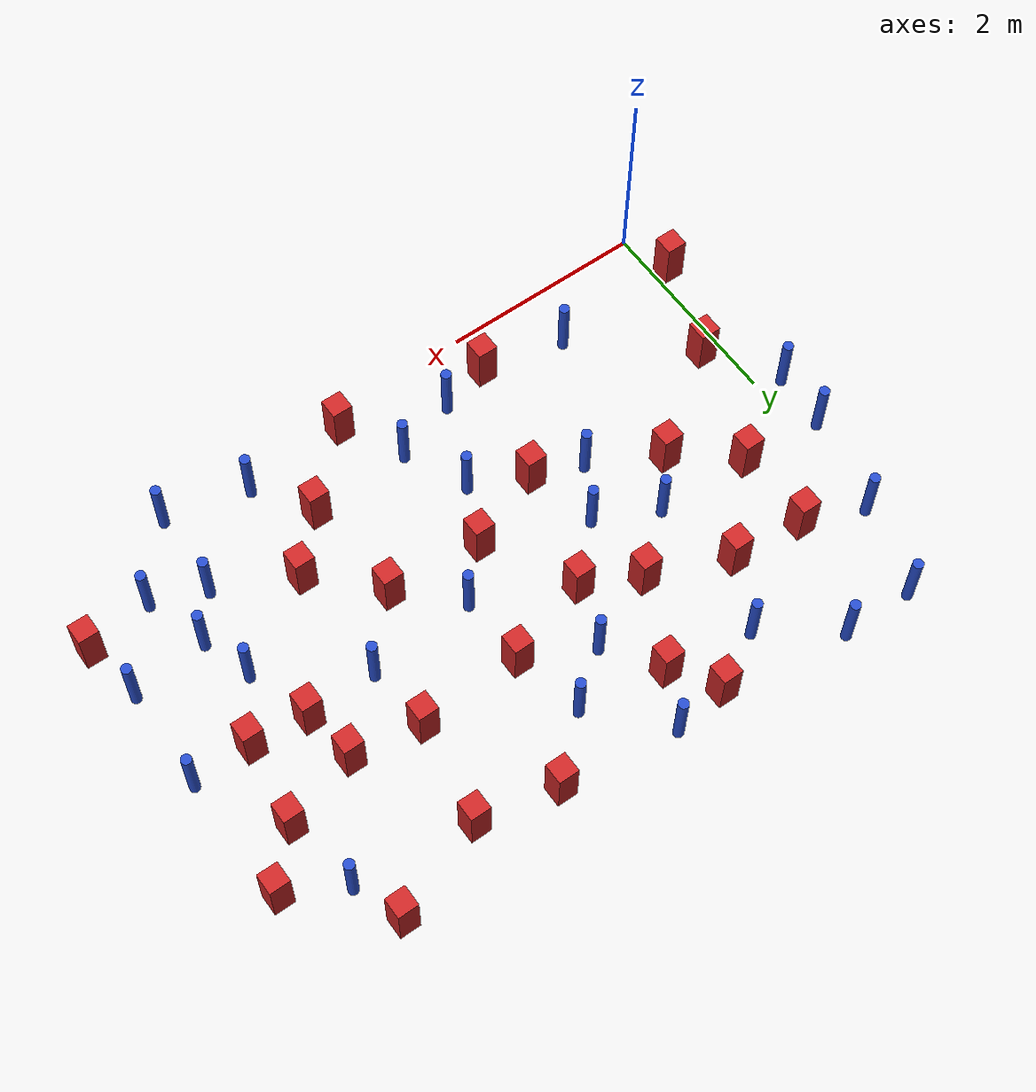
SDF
<sdf version="1.6">
 <model name="dense_53">
  <model name="square_post_obstacle0">
   <static>true</static>
   <pose>2.64326265349 2.7935497767 -6.11067671241e-07 -5.50515727128e-06 -8.79689657224e-07 2.37013304536e-05</pose>
   <link name="link">
    <pose>0 0 0.25 0 -0 0</pose>
    <inertial>
     <mass>100</mass>
     <inertia>
      <ixx>0.166667</ixx>
      <ixy>0</ixy>
      <ixz>0</ixz>
      <iyy>0.166667</iyy>
      <iyz>0</iyz>
      <izz>0.166667</izz>
     </inertia>
    </inertial>
    <collision name="collision"><geometry><box><size>.2 .2 .5</size></box></geometry></collision>
    <visual name="visual">
     <geometry><box><size>.2 .2 .5</size></box></geometry>
     <material>
      <script><name>Gazebo/Red</name><uri>file://media/materials/scripts/gazebo.material</uri></script>
     </material>
    </visual>
   </link>
  </model>
  <model name="pole_obstacle1">
   <static>true</static>
   <pose>1.67325718551 4.01669044763 -9.47619616065e-06 5.49618799737e-07 2.3631041406e-07 -1.55090534801e-07</pose>
   <link name="link">
    <pose>0 0 0.3 0 -0 0</pose>
    <inertial>
     <mass>1</mass>
     <inertia><ixx>0.145833</ixx><ixy>0</ixy><ixz>0</ixz><iyy>0.145833</iyy><iyz>0</iyz><izz>0.125</izz></inertia>
    </inertial>
    <collision name="collision">
     <geometry><cylinder><radius>0.05</radius><length>.6</length></cylinder></geometry>
    </collision>
    <visual name="visual">
     <geometry><cylinder><radius>0.05</radius><length>.6</length></cylinder></geometry>
     <material>
      <script><name>Gazebo/Blue</name><uri>file://media/materials/scripts/gazebo.material</uri></script>
     </material>
    </visual>
   </link>
  </model>
  <model name="square_post_obstacle8">
   <static>true</static>
   <pose>5.17539859756 2.99115189557 -6.11067671241e-07 -5.50515727128e-06 -8.79689657224e-07 2.37013304536e-05</pose>
   <link name="link">
    <pose>0 0 0.25 0 -0 0</pose>
    <inertial>
     <mass>100</mass>
     <inertia>
      <ixx>0.166667</ixx>
      <ixy>0</ixy>
      <ixz>0</ixz>
      <iyy>0.166667</iyy>
      <iyz>0</iyz>
      <izz>0.166667</izz>
     </inertia>
    </inertial>
    <collision name="collision"><geometry><box><size>.2 .2 .5</size></box></geometry></collision>
    <visual name="visual">
     <geometry><box><size>.2 .2 .5</size></box></geometry>
     <material>
      <script><name>Gazebo/Red</name><uri>file://media/materials/scripts/gazebo.material</uri></script>
     </material>
    </visual>
   </link>
  </model>
  <model name="square_post_obstacle9">
   <static>true</static>
   <pose>2.01188806093 0.438989155133 -6.11067671241e-07 -5.50515727128e-06 -8.79689657224e-07 2.37013304536e-05</pose>
   <link name="link">
    <pose>0 0 0.25 0 -0 0</pose>
    <inertial>
     <mass>100</mass>
     <inertia>
      <ixx>0.166667</ixx>
      <ixy>0</ixy>
      <ixz>0</ixz>
      <iyy>0.166667</iyy>
      <iyz>0</iyz>
      <izz>0.166667</izz>
     </inertia>
    </inertial>
    <collision name="collision"><geometry><box><size>.2 .2 .5</size></box></geometry></collision>
    <visual name="visual">
     <geometry><box><size>.2 .2 .5</size></box></geometry>
     <material>
      <script><name>Gazebo/Red</name><uri>file://media/materials/scripts/gazebo.material</uri></script>
     </material>
    </visual>
   </link>
  </model>
  <model name="square_post_obstacle19">
   <static>true</static>
   <pose>2.12141466955 3.06621668363 -6.11067671241e-07 -5.50515727128e-06 -8.79689657224e-07 2.37013304536e-05</pose>
   <link name="link">
    <pose>0 0 0.25 0 -0 0</pose>
    <inertial>
     <mass>100</mass>
     <inertia>
      <ixx>0.166667</ixx>
      <ixy>0</ixy>
      <ixz>0</ixz>
      <iyy>0.166667</iyy>
      <iyz>0</iyz>
      <izz>0.166667</izz>
     </inertia>
    </inertial>
    <collision name="collision"><geometry><box><size>.2 .2 .5</size></box></geometry></collision>
    <visual name="visual">
     <geometry><box><size>.2 .2 .5</size></box></geometry>
     <material>
      <script><name>Gazebo/Red</name><uri>file://media/materials/scripts/gazebo.material</uri></script>
     </material>
    </visual>
   </link>
  </model>
  <model name="square_post_obstacle23">
   <static>true</static>
   <pose>0.218265977354 1.46688420381 -6.11067671241e-07 -5.50515727128e-06 -8.79689657224e-07 2.37013304536e-05</pose>
   <link name="link">
    <pose>0 0 0.25 0 -0 0</pose>
    <inertial>
     <mass>100</mass>
     <inertia>
      <ixx>0.166667</ixx>
      <ixy>0</ixy>
      <ixz>0</ixz>
      <iyy>0.166667</iyy>
      <iyz>0</iyz>
      <izz>0.166667</izz>
     </inertia>
    </inertial>
    <collision name="collision"><geometry><box><size>.2 .2 .5</size></box></geometry></collision>
    <visual name="visual">
     <geometry><box><size>.2 .2 .5</size></box></geometry>
     <material>
      <script><name>Gazebo/Red</name><uri>file://media/materials/scripts/gazebo.material</uri></script>
     </material>
    </visual>
   </link>
  </model>
  <model name="square_post_obstacle30">
   <static>true</static>
   <pose>5.6018355657 4.41001559066 -6.11067671241e-07 -5.50515727128e-06 -8.79689657224e-07 2.37013304536e-05</pose>
   <link name="link">
    <pose>0 0 0.25 0 -0 0</pose>
    <inertial>
     <mass>100</mass>
     <inertia>
      <ixx>0.166667</ixx>
      <ixy>0</ixy>
      <ixz>0</ixz>
      <iyy>0.166667</iyy>
      <iyz>0</iyz>
      <izz>0.166667</izz>
     </inertia>
    </inertial>
    <collision name="collision"><geometry><box><size>.2 .2 .5</size></box></geometry></collision>
    <visual name="visual">
     <geometry><box><size>.2 .2 .5</size></box></geometry>
     <material>
      <script><name>Gazebo/Red</name><uri>file://media/materials/scripts/gazebo.material</uri></script>
     </material>
    </visual>
   </link>
  </model>
  <model name="pole_obstacle21">
   <static>true</static>
   <pose>1.1973587895 0.607261237285 -9.47619616065e-06 5.49618799737e-07 2.36310414065e-07 -1.55090534798e-07</pose>
   <link name="link">
    <pose>0 0 0.3 0 -0 0</pose>
    <inertial>
     <mass>1</mass>
     <inertia><ixx>0.145833</ixx><ixy>0</ixy><ixz>0</ixz><iyy>0.145833</iyy><iyz>0</iyz><izz>0.125</izz></inertia>
    </inertial>
    <collision name="collision">
     <geometry><cylinder><radius>0.05</radius><length>.6</length></cylinder></geometry>
    </collision>
    <visual name="visual">
     <geometry><cylinder><radius>0.05</radius><length>.6</length></cylinder></geometry>
     <material>
      <script><name>Gazebo/Blue</name><uri>file://media/materials/scripts/gazebo.material</uri></script>
     </material>
    </visual>
   </link>
  </model>
  <model name="square_post_obstacle32">
   <static>true</static>
   <pose>4.03051807676 1.88196295636 -6.11067671241e-07 -5.50515727128e-06 -8.79689657224e-07 2.37013304536e-05</pose>
   <link name="link">
    <pose>0 0 0.25 0 -0 0</pose>
    <inertial>
     <mass>100</mass>
     <inertia>
      <ixx>0.166667</ixx>
      <ixy>0</ixy>
      <ixz>0</ixz>
      <iyy>0.166667</iyy>
      <iyz>0</iyz>
      <izz>0.166667</izz>
     </inertia>
    </inertial>
    <collision name="collision"><geometry><box><size>.2 .2 .5</size></box></geometry></collision>
    <visual name="visual">
     <geometry><box><size>.2 .2 .5</size></box></geometry>
     <material>
      <script><name>Gazebo/Red</name><uri>file://media/materials/scripts/gazebo.material</uri></script>
     </material>
    </visual>
   </link>
  </model>
  <model name="pole_obstacle29">
   <static>true</static>
   <pose>0.0483259557495 3.65297619411 -9.4761961606e-06 5.49618799729e-07 2.36310413998e-07 -1.55090534825e-07</pose>
   <link name="link">
    <pose>0 0 0.3 0 -0 0</pose>
    <inertial>
     <mass>1</mass>
     <inertia><ixx>0.145833</ixx><ixy>0</ixy><ixz>0</ixz><iyy>0.145833</iyy><iyz>0</iyz><izz>0.125</izz></inertia>
    </inertial>
    <collision name="collision">
     <geometry><cylinder><radius>0.05</radius><length>.6</length></cylinder></geometry>
    </collision>
    <visual name="visual">
     <geometry><cylinder><radius>0.05</radius><length>.6</length></cylinder></geometry>
     <material>
      <script><name>Gazebo/Blue</name><uri>file://media/materials/scripts/gazebo.material</uri></script>
     </material>
    </visual>
   </link>
  </model>
  <model name="square_post_obstacle34">
   <static>true</static>
   <pose>0.638338198088 2.637271387 -6.11067671241e-07 -5.50515727128e-06 -8.79689657224e-07 2.37013304536e-05</pose>
   <link name="link">
    <pose>0 0 0.25 0 -0 0</pose>
    <inertial>
     <mass>100</mass>
     <inertia>
      <ixx>0.166667</ixx>
      <ixy>0</ixy>
      <ixz>0</ixz>
      <iyy>0.166667</iyy>
      <iyz>0</iyz>
      <izz>0.166667</izz>
     </inertia>
    </inertial>
    <collision name="collision"><geometry><box><size>.2 .2 .5</size></box></geometry></collision>
    <visual name="visual">
     <geometry><box><size>.2 .2 .5</size></box></geometry>
     <material>
      <script><name>Gazebo/Red</name><uri>file://media/materials/scripts/gazebo.material</uri></script>
     </material>
    </visual>
   </link>
  </model>
  <model name="pole_obstacle35">
   <static>true</static>
   <pose>-0.220098208647 2.12647914286 -9.4761961606e-06 5.49618799729e-07 2.36310413995e-07 -1.55090534826e-07</pose>
   <link name="link">
    <pose>0 0 0.3 0 -0 0</pose>
    <inertial>
     <mass>1</mass>
     <inertia><ixx>0.145833</ixx><ixy>0</ixy><ixz>0</ixz><iyy>0.145833</iyy><iyz>0</iyz><izz>0.125</izz></inertia>
    </inertial>
    <collision name="collision">
     <geometry><cylinder><radius>0.05</radius><length>.6</length></cylinder></geometry>
    </collision>
    <visual name="visual">
     <geometry><cylinder><radius>0.05</radius><length>.6</length></cylinder></geometry>
     <material>
      <script><name>Gazebo/Blue</name><uri>file://media/materials/scripts/gazebo.material</uri></script>
     </material>
    </visual>
   </link>
  </model>
  <model name="square_post_obstacle38">
   <static>true</static>
   <pose>0.642048165023 3.43116105708 -6.11067671241e-07 -5.50515727128e-06 -8.79689657224e-07 2.37013304536e-05</pose>
   <link name="link">
    <pose>0 0 0.25 0 -0 0</pose>
    <inertial>
     <mass>100</mass>
     <inertia>
      <ixx>0.166667</ixx>
      <ixy>0</ixy>
      <ixz>0</ixz>
      <iyy>0.166667</iyy>
      <iyz>0</iyz>
      <izz>0.166667</izz>
     </inertia>
    </inertial>
    <collision name="collision"><geometry><box><size>.2 .2 .5</size></box></geometry></collision>
    <visual name="visual">
     <geometry><box><size>.2 .2 .5</size></box></geometry>
     <material>
      <script><name>Gazebo/Red</name><uri>file://media/materials/scripts/gazebo.material</uri></script>
     </material>
    </visual>
   </link>
  </model>
  <model name="square_post_obstacle46">
   <static>true</static>
   <pose>2.32449474555 1.6426643199 -6.11067671241e-07 -5.50515727128e-06 -8.79689657224e-07 2.37013304536e-05</pose>
   <link name="link">
    <pose>0 0 0.25 0 -0 0</pose>
    <inertial>
     <mass>100</mass>
     <inertia>
      <ixx>0.166667</ixx>
      <ixy>0</ixy>
      <ixz>0</ixz>
      <iyy>0.166667</iyy>
      <iyz>0</iyz>
      <izz>0.166667</izz>
     </inertia>
    </inertial>
    <collision name="collision"><geometry><box><size>.2 .2 .5</size></box></geometry></collision>
    <visual name="visual">
     <geometry><box><size>.2 .2 .5</size></box></geometry>
     <material>
      <script><name>Gazebo/Red</name><uri>file://media/materials/scripts/gazebo.material</uri></script>
     </material>
    </visual>
   </link>
  </model>
  <model name="pole_obstacle53">
   <static>true</static>
   <pose>-0.175183836312 2.69586648533 -9.47619616065e-06 5.49618799738e-07 2.36310414068e-07 -1.55090534794e-07</pose>
   <link name="link">
    <pose>0 0 0.3 0 -0 0</pose>
    <inertial>
     <mass>1</mass>
     <inertia><ixx>0.145833</ixx><ixy>0</ixy><ixz>0</ixz><iyy>0.145833</iyy><iyz>0</iyz><izz>0.125</izz></inertia>
    </inertial>
    <collision name="collision">
     <geometry><cylinder><radius>0.05</radius><length>.6</length></cylinder></geometry>
    </collision>
    <visual name="visual">
     <geometry><cylinder><radius>0.05</radius><length>.6</length></cylinder></geometry>
     <material>
      <script><name>Gazebo/Blue</name><uri>file://media/materials/scripts/gazebo.material</uri></script>
     </material>
    </visual>
   </link>
  </model>
  <model name="pole_obstacle58">
   <static>true</static>
   <pose>5.80623147461 0.737018467399 -9.47619616065e-06 5.49618799737e-07 2.36310414061e-07 -1.550905348e-07</pose>
   <link name="link">
    <pose>0 0 0.3 0 -0 0</pose>
    <inertial>
     <mass>1</mass>
     <inertia><ixx>0.145833</ixx><ixy>0</ixy><ixz>0</ixz><iyy>0.145833</iyy><iyz>0</iyz><izz>0.125</izz></inertia>
    </inertial>
    <collision name="collision">
     <geometry><cylinder><radius>0.05</radius><length>.6</length></cylinder></geometry>
    </collision>
    <visual name="visual">
     <geometry><cylinder><radius>0.05</radius><length>.6</length></cylinder></geometry>
     <material>
      <script><name>Gazebo/Blue</name><uri>file://media/materials/scripts/gazebo.material</uri></script>
     </material>
    </visual>
   </link>
  </model>
  <model name="square_post_obstacle62">
   <static>true</static>
   <pose>6.32141894441 3.65301750351 -6.11067671241e-07 -5.50515727128e-06 -8.79689657224e-07 2.37013304536e-05</pose>
   <link name="link">
    <pose>0 0 0.25 0 -0 0</pose>
    <inertial>
     <mass>100</mass>
     <inertia>
      <ixx>0.166667</ixx>
      <ixy>0</ixy>
      <ixz>0</ixz>
      <iyy>0.166667</iyy>
      <iyz>0</iyz>
      <izz>0.166667</izz>
     </inertia>
    </inertial>
    <collision name="collision"><geometry><box><size>.2 .2 .5</size></box></geometry></collision>
    <visual name="visual">
     <geometry><box><size>.2 .2 .5</size></box></geometry>
     <material>
      <script><name>Gazebo/Red</name><uri>file://media/materials/scripts/gazebo.material</uri></script>
     </material>
    </visual>
   </link>
  </model>
  <model name="square_post_obstacle65">
   <static>true</static>
   <pose>6.4489217016 0.84232384105 -6.11067671241e-07 -5.50515727128e-06 -8.79689657224e-07 2.37013304536e-05</pose>
   <link name="link">
    <pose>0 0 0.25 0 -0 0</pose>
    <inertial>
     <mass>100</mass>
     <inertia>
      <ixx>0.166667</ixx>
      <ixy>0</ixy>
      <ixz>0</ixz>
      <iyy>0.166667</iyy>
      <iyz>0</iyz>
      <izz>0.166667</izz>
     </inertia>
    </inertial>
    <collision name="collision"><geometry><box><size>.2 .2 .5</size></box></geometry></collision>
    <visual name="visual">
     <geometry><box><size>.2 .2 .5</size></box></geometry>
     <material>
      <script><name>Gazebo/Red</name><uri>file://media/materials/scripts/gazebo.material</uri></script>
     </material>
    </visual>
   </link>
  </model>
  <model name="square_post_obstacle71">
   <static>true</static>
   <pose>2.23199578063 4.31087838793 -6.11067671241e-07 -5.50515727128e-06 -8.79689657224e-07 2.37013304536e-05</pose>
   <link name="link">
    <pose>0 0 0.25 0 -0 0</pose>
    <inertial>
     <mass>100</mass>
     <inertia>
      <ixx>0.166667</ixx>
      <ixy>0</ixy>
      <ixz>0</ixz>
      <iyy>0.166667</iyy>
      <iyz>0</iyz>
      <izz>0.166667</izz>
     </inertia>
    </inertial>
    <collision name="collision"><geometry><box><size>.2 .2 .5</size></box></geometry></collision>
    <visual name="visual">
     <geometry><box><size>.2 .2 .5</size></box></geometry>
     <material>
      <script><name>Gazebo/Red</name><uri>file://media/materials/scripts/gazebo.material</uri></script>
     </material>
    </visual>
   </link>
  </model>
  <model name="pole_obstacle72">
   <static>true</static>
   <pose>5.78239024026 3.94156603827 -9.47619616065e-06 5.49618799738e-07 2.36310414051e-07 -1.55090534805e-07</pose>
   <link name="link">
    <pose>0 0 0.3 0 -0 0</pose>
    <inertial>
     <mass>1</mass>
     <inertia><ixx>0.145833</ixx><ixy>0</ixy><ixz>0</ixz><iyy>0.145833</iyy><iyz>0</iyz><izz>0.125</izz></inertia>
    </inertial>
    <collision name="collision">
     <geometry><cylinder><radius>0.05</radius><length>.6</length></cylinder></geometry>
    </collision>
    <visual name="visual">
     <geometry><cylinder><radius>0.05</radius><length>.6</length></cylinder></geometry>
     <material>
      <script><name>Gazebo/Blue</name><uri>file://media/materials/scripts/gazebo.material</uri></script>
     </material>
    </visual>
   </link>
  </model>
  <model name="pole_obstacle73">
   <static>true</static>
   <pose>2.84754283846 3.36684391481 -9.47619616065e-06 5.49618799737e-07 2.36310414051e-07 -1.55090534807e-07</pose>
   <link name="link">
    <pose>0 0 0.3 0 -0 0</pose>
    <inertial>
     <mass>1</mass>
     <inertia><ixx>0.145833</ixx><ixy>0</ixy><ixz>0</ixz><iyy>0.145833</iyy><iyz>0</iyz><izz>0.125</izz></inertia>
    </inertial>
    <collision name="collision">
     <geometry><cylinder><radius>0.05</radius><length>.6</length></cylinder></geometry>
    </collision>
    <visual name="visual">
     <geometry><cylinder><radius>0.05</radius><length>.6</length></cylinder></geometry>
     <material>
      <script><name>Gazebo/Blue</name><uri>file://media/materials/scripts/gazebo.material</uri></script>
     </material>
    </visual>
   </link>
  </model>
  <model name="pole_obstacle75">
   <static>true</static>
   <pose>0.30811772106 4.52176608656 -9.47619616065e-06 5.49618799737e-07 2.36310414065e-07 -1.55090534796e-07</pose>
   <link name="link">
    <pose>0 0 0.3 0 -0 0</pose>
    <inertial>
     <mass>1</mass>
     <inertia><ixx>0.145833</ixx><ixy>0</ixy><ixz>0</ixz><iyy>0.145833</iyy><iyz>0</iyz><izz>0.125</izz></inertia>
    </inertial>
    <collision name="collision">
     <geometry><cylinder><radius>0.05</radius><length>.6</length></cylinder></geometry>
    </collision>
    <visual name="visual">
     <geometry><cylinder><radius>0.05</radius><length>.6</length></cylinder></geometry>
     <material>
      <script><name>Gazebo/Blue</name><uri>file://media/materials/scripts/gazebo.material</uri></script>
     </material>
    </visual>
   </link>
  </model>
  <model name="pole_obstacle81">
   <static>true</static>
   <pose>2.13803380317 2.31322065516 -9.47619616065e-06 5.49618799737e-07 2.36310414051e-07 -1.55090534807e-07</pose>
   <link name="link">
    <pose>0 0 0.3 0 -0 0</pose>
    <inertial>
     <mass>1</mass>
     <inertia><ixx>0.145833</ixx><ixy>0</ixy><ixz>0</ixz><iyy>0.145833</iyy><iyz>0</iyz><izz>0.125</izz></inertia>
    </inertial>
    <collision name="collision">
     <geometry><cylinder><radius>0.05</radius><length>.6</length></cylinder></geometry>
    </collision>
    <visual name="visual">
     <geometry><cylinder><radius>0.05</radius><length>.6</length></cylinder></geometry>
     <material>
      <script><name>Gazebo/Blue</name><uri>file://media/materials/scripts/gazebo.material</uri></script>
     </material>
    </visual>
   </link>
  </model>
  <model name="pole_obstacle82">
   <static>true</static>
   <pose>5.2673751742 0.0861989654456 -9.47619616065e-06 5.49618799737e-07 2.36310414064e-07 -1.55090534798e-07</pose>
   <link name="link">
    <pose>0 0 0.3 0 -0 0</pose>
    <inertial>
     <mass>1</mass>
     <inertia><ixx>0.145833</ixx><ixy>0</ixy><ixz>0</ixz><iyy>0.145833</iyy><iyz>0</iyz><izz>0.125</izz></inertia>
    </inertial>
    <collision name="collision">
     <geometry><cylinder><radius>0.05</radius><length>.6</length></cylinder></geometry>
    </collision>
    <visual name="visual">
     <geometry><cylinder><radius>0.05</radius><length>.6</length></cylinder></geometry>
     <material>
      <script><name>Gazebo/Blue</name><uri>file://media/materials/scripts/gazebo.material</uri></script>
     </material>
    </visual>
   </link>
  </model>
  <model name="pole_obstacle86">
   <static>true</static>
   <pose>3.33875394392 3.74084037561 -9.47619616065e-06 5.49618799737e-07 2.36310414051e-07 -1.55090534807e-07</pose>
   <link name="link">
    <pose>0 0 0.3 0 -0 0</pose>
    <inertial>
     <mass>1</mass>
     <inertia><ixx>0.145833</ixx><ixy>0</ixy><ixz>0</ixz><iyy>0.145833</iyy><iyz>0</iyz><izz>0.125</izz></inertia>
    </inertial>
    <collision name="collision">
     <geometry><cylinder><radius>0.05</radius><length>.6</length></cylinder></geometry>
    </collision>
    <visual name="visual">
     <geometry><cylinder><radius>0.05</radius><length>.6</length></cylinder></geometry>
     <material>
      <script><name>Gazebo/Blue</name><uri>file://media/materials/scripts/gazebo.material</uri></script>
     </material>
    </visual>
   </link>
  </model>
  <model name="pole_obstacle96">
   <static>true</static>
   <pose>4.46110096537 0.269814581207 -9.47619616065e-06 5.49618799737e-07 2.3631041406e-07 -1.550905348e-07</pose>
   <link name="link">
    <pose>0 0 0.3 0 -0 0</pose>
    <inertial>
     <mass>1</mass>
     <inertia><ixx>0.145833</ixx><ixy>0</ixy><ixz>0</ixz><iyy>0.145833</iyy><iyz>0</iyz><izz>0.125</izz></inertia>
    </inertial>
    <collision name="collision">
     <geometry><cylinder><radius>0.05</radius><length>.6</length></cylinder></geometry>
    </collision>
    <visual name="visual">
     <geometry><cylinder><radius>0.05</radius><length>.6</length></cylinder></geometry>
     <material>
      <script><name>Gazebo/Blue</name><uri>file://media/materials/scripts/gazebo.material</uri></script>
     </material>
    </visual>
   </link>
  </model>
  <model name="square_post_obstacle86">
   <static>true</static>
   <pose>4.50449124375 3.10313683029 -6.11067671241e-07 -5.50515727128e-06 -8.79689657224e-07 2.37013304536e-05</pose>
   <link name="link">
    <pose>0 0 0.25 0 -0 0</pose>
    <inertial>
     <mass>100</mass>
     <inertia>
      <ixx>0.166667</ixx>
      <ixy>0</ixy>
      <ixz>0</ixz>
      <iyy>0.166667</iyy>
      <iyz>0</iyz>
      <izz>0.166667</izz>
     </inertia>
    </inertial>
    <collision name="collision"><geometry><box><size>.2 .2 .5</size></box></geometry></collision>
    <visual name="visual">
     <geometry><box><size>.2 .2 .5</size></box></geometry>
     <material>
      <script><name>Gazebo/Red</name><uri>file://media/materials/scripts/gazebo.material</uri></script>
     </material>
    </visual>
   </link>
  </model>
  <model name="pole_obstacle98">
   <static>true</static>
   <pose>3.12145613731 0.774537572794 -9.47619616065e-06 5.49618799738e-07 2.36310414075e-07 -1.55090534793e-07</pose>
   <link name="link">
    <pose>0 0 0.3 0 -0 0</pose>
    <inertial>
     <mass>1</mass>
     <inertia><ixx>0.145833</ixx><ixy>0</ixy><ixz>0</ixz><iyy>0.145833</iyy><iyz>0</iyz><izz>0.125</izz></inertia>
    </inertial>
    <collision name="collision">
     <geometry><cylinder><radius>0.05</radius><length>.6</length></cylinder></geometry>
    </collision>
    <visual name="visual">
     <geometry><cylinder><radius>0.05</radius><length>.6</length></cylinder></geometry>
     <material>
      <script><name>Gazebo/Blue</name><uri>file://media/materials/scripts/gazebo.material</uri></script>
     </material>
    </visual>
   </link>
  </model>
  <model name="pole_obstacle101">
   <static>true</static>
   <pose>1.84097212876 1.81358436316 -9.47619616065e-06 5.49618799737e-07 2.36310414065e-07 -1.55090534798e-07</pose>
   <link name="link">
    <pose>0 0 0.3 0 -0 0</pose>
    <inertial>
     <mass>1</mass>
     <inertia><ixx>0.145833</ixx><ixy>0</ixy><ixz>0</ixz><iyy>0.145833</iyy><iyz>0</iyz><izz>0.125</izz></inertia>
    </inertial>
    <collision name="collision">
     <geometry><cylinder><radius>0.05</radius><length>.6</length></cylinder></geometry>
    </collision>
    <visual name="visual">
     <geometry><cylinder><radius>0.05</radius><length>.6</length></cylinder></geometry>
     <material>
      <script><name>Gazebo/Blue</name><uri>file://media/materials/scripts/gazebo.material</uri></script>
     </material>
    </visual>
   </link>
  </model>
  <model name="square_post_obstacle96">
   <static>true</static>
   <pose>5.90619602401 3.21016827286 -6.11067671241e-07 -5.50515727128e-06 -8.79689657224e-07 2.37013304536e-05</pose>
   <link name="link">
    <pose>0 0 0.25 0 -0 0</pose>
    <inertial>
     <mass>100</mass>
     <inertia>
      <ixx>0.166667</ixx>
      <ixy>0</ixy>
      <ixz>0</ixz>
      <iyy>0.166667</iyy>
      <iyz>0</iyz>
      <izz>0.166667</izz>
     </inertia>
    </inertial>
    <collision name="collision"><geometry><box><size>.2 .2 .5</size></box></geometry></collision>
    <visual name="visual">
     <geometry><box><size>.2 .2 .5</size></box></geometry>
     <material>
      <script><name>Gazebo/Red</name><uri>file://media/materials/scripts/gazebo.material</uri></script>
     </material>
    </visual>
   </link>
  </model>
  <model name="pole_obstacle110">
   <static>true</static>
   <pose>3.51687782999 2.36335226181 -9.47619616065e-06 5.49618799737e-07 2.36310414051e-07 -1.55090534807e-07</pose>
   <link name="link">
    <pose>0 0 0.3 0 -0 0</pose>
    <inertial>
     <mass>1</mass>
     <inertia><ixx>0.145833</ixx><ixy>0</ixy><ixz>0</ixz><iyy>0.145833</iyy><iyz>0</iyz><izz>0.125</izz></inertia>
    </inertial>
    <collision name="collision">
     <geometry><cylinder><radius>0.05</radius><length>.6</length></cylinder></geometry>
    </collision>
    <visual name="visual">
     <geometry><cylinder><radius>0.05</radius><length>.6</length></cylinder></geometry>
     <material>
      <script><name>Gazebo/Blue</name><uri>file://media/materials/scripts/gazebo.material</uri></script>
     </material>
    </visual>
   </link>
  </model>
  <model name="pole_obstacle111">
   <static>true</static>
   <pose>5.60923711819 1.34564871552 -9.47619616065e-06 5.49618799738e-07 2.36310414071e-07 -1.55090534796e-07</pose>
   <link name="link">
    <pose>0 0 0.3 0 -0 0</pose>
    <inertial>
     <mass>1</mass>
     <inertia><ixx>0.145833</ixx><ixy>0</ixy><ixz>0</ixz><iyy>0.145833</iyy><iyz>0</iyz><izz>0.125</izz></inertia>
    </inertial>
    <collision name="collision">
     <geometry><cylinder><radius>0.05</radius><length>.6</length></cylinder></geometry>
    </collision>
    <visual name="visual">
     <geometry><cylinder><radius>0.05</radius><length>.6</length></cylinder></geometry>
     <material>
      <script><name>Gazebo/Blue</name><uri>file://media/materials/scripts/gazebo.material</uri></script>
     </material>
    </visual>
   </link>
  </model>
  <model name="square_post_obstacle101">
   <static>true</static>
   <pose>4.6620901332 4.07577329841 -6.11067671241e-07 -5.50515727128e-06 -8.79689657224e-07 2.37013304536e-05</pose>
   <link name="link">
    <pose>0 0 0.25 0 -0 0</pose>
    <inertial>
     <mass>100</mass>
     <inertia>
      <ixx>0.166667</ixx>
      <ixy>0</ixy>
      <ixz>0</ixz>
      <iyy>0.166667</iyy>
      <iyz>0</iyz>
      <izz>0.166667</izz>
     </inertia>
    </inertial>
    <collision name="collision"><geometry><box><size>.2 .2 .5</size></box></geometry></collision>
    <visual name="visual">
     <geometry><box><size>.2 .2 .5</size></box></geometry>
     <material>
      <script><name>Gazebo/Red</name><uri>file://media/materials/scripts/gazebo.material</uri></script>
     </material>
    </visual>
   </link>
  </model>
  <model name="pole_obstacle118">
   <static>true</static>
   <pose>6.3518518493 1.43069295154 -9.47619616065e-06 5.49618799738e-07 2.36310414071e-07 -1.55090534796e-07</pose>
   <link name="link">
    <pose>0 0 0.3 0 -0 0</pose>
    <inertial>
     <mass>1</mass>
     <inertia><ixx>0.145833</ixx><ixy>0</ixy><ixz>0</ixz><iyy>0.145833</iyy><iyz>0</iyz><izz>0.125</izz></inertia>
    </inertial>
    <collision name="collision">
     <geometry><cylinder><radius>0.05</radius><length>.6</length></cylinder></geometry>
    </collision>
    <visual name="visual">
     <geometry><cylinder><radius>0.05</radius><length>.6</length></cylinder></geometry>
     <material>
      <script><name>Gazebo/Blue</name><uri>file://media/materials/scripts/gazebo.material</uri></script>
     </material>
    </visual>
   </link>
  </model>
  <model name="pole_obstacle129">
   <static>true</static>
   <pose>2.49813385997 0.564673063878 -9.47619616065e-06 5.49618799738e-07 2.36310414075e-07 -1.55090534793e-07</pose>
   <link name="link">
    <pose>0 0 0.3 0 -0 0</pose>
    <inertial>
     <mass>1</mass>
     <inertia><ixx>0.145833</ixx><ixy>0</ixy><ixz>0</ixz><iyy>0.145833</iyy><iyz>0</iyz><izz>0.125</izz></inertia>
    </inertial>
    <collision name="collision">
     <geometry><cylinder><radius>0.05</radius><length>.6</length></cylinder></geometry>
    </collision>
    <visual name="visual">
     <geometry><cylinder><radius>0.05</radius><length>.6</length></cylinder></geometry>
     <material>
      <script><name>Gazebo/Blue</name><uri>file://media/materials/scripts/gazebo.material</uri></script>
     </material>
    </visual>
   </link>
  </model>
  <model name="square_post_obstacle115">
   <static>true</static>
   <pose>5.25163695553 2.47332419513 -6.11067671241e-07 -5.50515727128e-06 -8.79689657224e-07 2.37013304536e-05</pose>
   <link name="link">
    <pose>0 0 0.25 0 -0 0</pose>
    <inertial>
     <mass>100</mass>
     <inertia>
      <ixx>0.166667</ixx>
      <ixy>0</ixy>
      <ixz>0</ixz>
      <iyy>0.166667</iyy>
      <iyz>0</iyz>
      <izz>0.166667</izz>
     </inertia>
    </inertial>
    <collision name="collision"><geometry><box><size>.2 .2 .5</size></box></geometry></collision>
    <visual name="visual">
     <geometry><box><size>.2 .2 .5</size></box></geometry>
     <material>
      <script><name>Gazebo/Red</name><uri>file://media/materials/scripts/gazebo.material</uri></script>
     </material>
    </visual>
   </link>
  </model>
  <model name="pole_obstacle138">
   <static>true</static>
   <pose>2.84393818982 1.37999906448 -9.47619616065e-06 5.49618799737e-07 2.36310414072e-07 -1.55090534793e-07</pose>
   <link name="link">
    <pose>0 0 0.3 0 -0 0</pose>
    <inertial>
     <mass>1</mass>
     <inertia><ixx>0.145833</ixx><ixy>0</ixy><ixz>0</ixz><iyy>0.145833</iyy><iyz>0</iyz><izz>0.125</izz></inertia>
    </inertial>
    <collision name="collision">
     <geometry><cylinder><radius>0.05</radius><length>.6</length></cylinder></geometry>
    </collision>
    <visual name="visual">
     <geometry><cylinder><radius>0.05</radius><length>.6</length></cylinder></geometry>
     <material>
      <script><name>Gazebo/Blue</name><uri>file://media/materials/scripts/gazebo.material</uri></script>
     </material>
    </visual>
   </link>
  </model>
  <model name="pole_obstacle141">
   <static>true</static>
   <pose>1.0019943978 4.51145477331 -9.47619616065e-06 5.49618799737e-07 2.36310414059e-07 -1.550905348e-07</pose>
   <link name="link">
    <pose>0 0 0.3 0 -0 0</pose>
    <inertial>
     <mass>1</mass>
     <inertia><ixx>0.145833</ixx><ixy>0</ixy><ixz>0</ixz><iyy>0.145833</iyy><iyz>0</iyz><izz>0.125</izz></inertia>
    </inertial>
    <collision name="collision">
     <geometry><cylinder><radius>0.05</radius><length>.6</length></cylinder></geometry>
    </collision>
    <visual name="visual">
     <geometry><cylinder><radius>0.05</radius><length>.6</length></cylinder></geometry>
     <material>
      <script><name>Gazebo/Blue</name><uri>file://media/materials/scripts/gazebo.material</uri></script>
     </material>
    </visual>
   </link>
  </model>
  <model name="pole_obstacle145">
   <static>true</static>
   <pose>5.45431777919 1.83151655857 -9.47619616065e-06 5.49618799738e-07 2.36310414071e-07 -1.55090534796e-07</pose>
   <link name="link">
    <pose>0 0 0.3 0 -0 0</pose>
    <inertial>
     <mass>1</mass>
     <inertia><ixx>0.145833</ixx><ixy>0</ixy><ixz>0</ixz><iyy>0.145833</iyy><iyz>0</iyz><izz>0.125</izz></inertia>
    </inertial>
    <collision name="collision">
     <geometry><cylinder><radius>0.05</radius><length>.6</length></cylinder></geometry>
    </collision>
    <visual name="visual">
     <geometry><cylinder><radius>0.05</radius><length>.6</length></cylinder></geometry>
     <material>
      <script><name>Gazebo/Blue</name><uri>file://media/materials/scripts/gazebo.material</uri></script>
     </material>
    </visual>
   </link>
  </model>
  <model name="square_post_obstacle139">
   <static>true</static>
   <pose>3.10821584897 1.94397625318 -6.11067671241e-07 -5.50515727128e-06 -8.79689657224e-07 2.37013304536e-05</pose>
   <link name="link">
    <pose>0 0 0.25 0 -0 0</pose>
    <inertial>
     <mass>100</mass>
     <inertia>
      <ixx>0.166667</ixx>
      <ixy>0</ixy>
      <ixz>0</ixz>
      <iyy>0.166667</iyy>
      <iyz>0</iyz>
      <izz>0.166667</izz>
     </inertia>
    </inertial>
    <collision name="collision"><geometry><box><size>.2 .2 .5</size></box></geometry></collision>
    <visual name="visual">
     <geometry><box><size>.2 .2 .5</size></box></geometry>
     <material>
      <script><name>Gazebo/Red</name><uri>file://media/materials/scripts/gazebo.material</uri></script>
     </material>
    </visual>
   </link>
  </model>
  <model name="square_post_obstacle143">
   <static>true</static>
   <pose>1.35471833447 3.37376423899 -6.11067671241e-07 -5.50515727128e-06 -8.79689657224e-07 2.37013304536e-05</pose>
   <link name="link">
    <pose>0 0 0.25 0 -0 0</pose>
    <inertial>
     <mass>100</mass>
     <inertia>
      <ixx>0.166667</ixx>
      <ixy>0</ixy>
      <ixz>0</ixz>
      <iyy>0.166667</iyy>
      <iyz>0</iyz>
      <izz>0.166667</izz>
     </inertia>
    </inertial>
    <collision name="collision"><geometry><box><size>.2 .2 .5</size></box></geometry></collision>
    <visual name="visual">
     <geometry><box><size>.2 .2 .5</size></box></geometry>
     <material>
      <script><name>Gazebo/Red</name><uri>file://media/materials/scripts/gazebo.material</uri></script>
     </material>
    </visual>
   </link>
  </model>
  <model name="square_post_obstacle146">
   <static>true</static>
   <pose>3.49594745811 3.06477056969 -6.11067671241e-07 -5.50515727128e-06 -8.79689657224e-07 2.37013304536e-05</pose>
   <link name="link">
    <pose>0 0 0.25 0 -0 0</pose>
    <inertial>
     <mass>100</mass>
     <inertia>
      <ixx>0.166667</ixx>
      <ixy>0</ixy>
      <ixz>0</ixz>
      <iyy>0.166667</iyy>
      <iyz>0</iyz>
      <izz>0.166667</izz>
     </inertia>
    </inertial>
    <collision name="collision"><geometry><box><size>.2 .2 .5</size></box></geometry></collision>
    <visual name="visual">
     <geometry><box><size>.2 .2 .5</size></box></geometry>
     <material>
      <script><name>Gazebo/Red</name><uri>file://media/materials/scripts/gazebo.material</uri></script>
     </material>
    </visual>
   </link>
  </model>
  <model name="pole_obstacle167">
   <static>true</static>
   <pose>1.55475608884 2.59568979523 -9.47619616065e-06 5.49618799737e-07 2.36310414062e-07 -1.55090534798e-07</pose>
   <link name="link">
    <pose>0 0 0.3 0 -0 0</pose>
    <inertial>
     <mass>1</mass>
     <inertia><ixx>0.145833</ixx><ixy>0</ixy><ixz>0</ixz><iyy>0.145833</iyy><iyz>0</iyz><izz>0.125</izz></inertia>
    </inertial>
    <collision name="collision">
     <geometry><cylinder><radius>0.05</radius><length>.6</length></cylinder></geometry>
    </collision>
    <visual name="visual">
     <geometry><cylinder><radius>0.05</radius><length>.6</length></cylinder></geometry>
     <material>
      <script><name>Gazebo/Blue</name><uri>file://media/materials/scripts/gazebo.material</uri></script>
     </material>
    </visual>
   </link>
  </model>
  <model name="pole_obstacle172">
   <static>true</static>
   <pose>6.36927538098 2.42018344628 -9.47619616065e-06 5.49618799738e-07 2.36310414051e-07 -1.55090534805e-07</pose>
   <link name="link">
    <pose>0 0 0.3 0 -0 0</pose>
    <inertial>
     <mass>1</mass>
     <inertia><ixx>0.145833</ixx><ixy>0</ixy><ixz>0</ixz><iyy>0.145833</iyy><iyz>0</iyz><izz>0.125</izz></inertia>
    </inertial>
    <collision name="collision">
     <geometry><cylinder><radius>0.05</radius><length>.6</length></cylinder></geometry>
    </collision>
    <visual name="visual">
     <geometry><cylinder><radius>0.05</radius><length>.6</length></cylinder></geometry>
     <material>
      <script><name>Gazebo/Blue</name><uri>file://media/materials/scripts/gazebo.material</uri></script>
     </material>
    </visual>
   </link>
  </model>
  <model name="pole_obstacle177">
   <static>true</static>
   <pose>2.75902976267 4.38501361247 -9.47619616065e-06 5.49618799738e-07 2.3631041406e-07 -1.55090534801e-07</pose>
   <link name="link">
    <pose>0 0 0.3 0 -0 0</pose>
    <inertial>
     <mass>1</mass>
     <inertia><ixx>0.145833</ixx><ixy>0</ixy><ixz>0</ixz><iyy>0.145833</iyy><iyz>0</iyz><izz>0.125</izz></inertia>
    </inertial>
    <collision name="collision">
     <geometry><cylinder><radius>0.05</radius><length>.6</length></cylinder></geometry>
    </collision>
    <visual name="visual">
     <geometry><cylinder><radius>0.05</radius><length>.6</length></cylinder></geometry>
     <material>
      <script><name>Gazebo/Blue</name><uri>file://media/materials/scripts/gazebo.material</uri></script>
     </material>
    </visual>
   </link>
  </model>
  <model name="square_post_obstacle167">
   <static>true</static>
   <pose>1.19757464138 2.1747632487 -6.11067671241e-07 -5.50515727128e-06 -8.79689657224e-07 2.37013304536e-05</pose>
   <link name="link">
    <pose>0 0 0.25 0 -0 0</pose>
    <inertial>
     <mass>100</mass>
     <inertia>
      <ixx>0.166667</ixx>
      <ixy>0</ixy>
      <ixz>0</ixz>
      <iyy>0.166667</iyy>
      <iyz>0</iyz>
      <izz>0.166667</izz>
     </inertia>
    </inertial>
    <collision name="collision"><geometry><box><size>.2 .2 .5</size></box></geometry></collision>
    <visual name="visual">
     <geometry><box><size>.2 .2 .5</size></box></geometry>
     <material>
      <script><name>Gazebo/Red</name><uri>file://media/materials/scripts/gazebo.material</uri></script>
     </material>
    </visual>
   </link>
  </model>
  <model name="square_post_obstacle173">
   <static>true</static>
   <pose>4.10714648593 0.825585048309 -6.11067671241e-07 -5.50515727128e-06 -8.79689657224e-07 2.37013304536e-05</pose>
   <link name="link">
    <pose>0 0 0.25 0 -0 0</pose>
    <inertial>
     <mass>100</mass>
     <inertia>
      <ixx>0.166667</ixx>
      <ixy>0</ixy>
      <ixz>0</ixz>
      <iyy>0.166667</iyy>
      <iyz>0</iyz>
      <izz>0.166667</izz>
     </inertia>
    </inertial>
    <collision name="collision"><geometry><box><size>.2 .2 .5</size></box></geometry></collision>
    <visual name="visual">
     <geometry><box><size>.2 .2 .5</size></box></geometry>
     <material>
      <script><name>Gazebo/Red</name><uri>file://media/materials/scripts/gazebo.material</uri></script>
     </material>
    </visual>
   </link>
  </model>
  <model name="square_post_obstacle176">
   <static>true</static>
   <pose>4.57017561437 1.30686988255 -6.11067671241e-07 -5.50515727128e-06 -8.79689657224e-07 2.37013304536e-05</pose>
   <link name="link">
    <pose>0 0 0.25 0 -0 0</pose>
    <inertial>
     <mass>100</mass>
     <inertia>
      <ixx>0.166667</ixx>
      <ixy>0</ixy>
      <ixz>0</ixz>
      <iyy>0.166667</iyy>
      <iyz>0</iyz>
      <izz>0.166667</izz>
     </inertia>
    </inertial>
    <collision name="collision"><geometry><box><size>.2 .2 .5</size></box></geometry></collision>
    <visual name="visual">
     <geometry><box><size>.2 .2 .5</size></box></geometry>
     <material>
      <script><name>Gazebo/Red</name><uri>file://media/materials/scripts/gazebo.material</uri></script>
     </material>
    </visual>
   </link>
  </model>
  <model name="square_post_obstacle181">
   <static>true</static>
   <pose>3.45100424384 0.202216119046 -6.11067671241e-07 -5.50515727128e-06 -8.79689657224e-07 2.37013304536e-05</pose>
   <link name="link">
    <pose>0 0 0.25 0 -0 0</pose>
    <inertial>
     <mass>100</mass>
     <inertia>
      <ixx>0.166667</ixx>
      <ixy>0</ixy>
      <ixz>0</ixz>
      <iyy>0.166667</iyy>
      <iyz>0</iyz>
      <izz>0.166667</izz>
     </inertia>
    </inertial>
    <collision name="collision"><geometry><box><size>.2 .2 .5</size></box></geometry></collision>
    <visual name="visual">
     <geometry><box><size>.2 .2 .5</size></box></geometry>
     <material>
      <script><name>Gazebo/Red</name><uri>file://media/materials/scripts/gazebo.material</uri></script>
     </material>
    </visual>
   </link>
  </model>
  <model name="pole_obstacle206">
   <static>true</static>
   <pose>4.56689697103 2.44648893138 -9.47619616065e-06 5.49618799738e-07 2.36310414051e-07 -1.55090534805e-07</pose>
   <link name="link">
    <pose>0 0 0.3 0 -0 0</pose>
    <inertial>
     <mass>1</mass>
     <inertia><ixx>0.145833</ixx><ixy>0</ixy><ixz>0</ixz><iyy>0.145833</iyy><iyz>0</iyz><izz>0.125</izz></inertia>
    </inertial>
    <collision name="collision">
     <geometry><cylinder><radius>0.05</radius><length>.6</length></cylinder></geometry>
    </collision>
    <visual name="visual">
     <geometry><cylinder><radius>0.05</radius><length>.6</length></cylinder></geometry>
     <material>
      <script><name>Gazebo/Blue</name><uri>file://media/materials/scripts/gazebo.material</uri></script>
     </material>
    </visual>
   </link>
  </model>
  <model name="square_post_obstacle210">
   <static>true</static>
   <pose>-0.132245266715 0.509038815798 -6.11067671241e-07 -5.50515727128e-06 -8.79689657224e-07 2.37013304536e-05</pose>
   <link name="link">
    <pose>0 0 0.25 0 -0 0</pose>
    <inertial>
     <mass>100</mass>
     <inertia>
      <ixx>0.166667</ixx>
      <ixy>0</ixy>
      <ixz>0</ixz>
      <iyy>0.166667</iyy>
      <iyz>0</iyz>
      <izz>0.166667</izz>
     </inertia>
    </inertial>
    <collision name="collision"><geometry><box><size>.2 .2 .5</size></box></geometry></collision>
    <visual name="visual">
     <geometry><box><size>.2 .2 .5</size></box></geometry>
     <material>
      <script><name>Gazebo/Red</name><uri>file://media/materials/scripts/gazebo.material</uri></script>
     </material>
    </visual>
   </link>
  </model>
  <model name="square_post_obstacle212">
   <static>true</static>
   <pose>5.79712820303 2.41744705828 -6.11067671241e-07 -5.50515727128e-06 -8.79689657224e-07 2.37013304536e-05</pose>
   <link name="link">
    <pose>0 0 0.25 0 -0 0</pose>
    <inertial>
     <mass>100</mass>
     <inertia>
      <ixx>0.166667</ixx>
      <ixy>0</ixy>
      <ixz>0</ixz>
      <iyy>0.166667</iyy>
      <iyz>0</iyz>
      <izz>0.166667</izz>
     </inertia>
    </inertial>
    <collision name="collision"><geometry><box><size>.2 .2 .5</size></box></geometry></collision>
    <visual name="visual">
     <geometry><box><size>.2 .2 .5</size></box></geometry>
     <material>
      <script><name>Gazebo/Red</name><uri>file://media/materials/scripts/gazebo.material</uri></script>
     </material>
    </visual>
   </link>
  </model>
  <model name="square_post_obstacle223">
   <static>true</static>
   <pose>2.51582436188 3.88459619668 -6.11067671241e-07 -5.50515727128e-06 -8.79689657224e-07 2.37013304536e-05</pose>
   <link name="link">
    <pose>0 0 0.25 0 -0 0</pose>
    <inertial>
     <mass>100</mass>
     <inertia>
      <ixx>0.166667</ixx>
      <ixy>0</ixy>
      <ixz>0</ixz>
      <iyy>0.166667</iyy>
      <iyz>0</iyz>
      <izz>0.166667</izz>
     </inertia>
    </inertial>
    <collision name="collision"><geometry><box><size>.2 .2 .5</size></box></geometry></collision>
    <visual name="visual">
     <geometry><box><size>.2 .2 .5</size></box></geometry>
     <material>
      <script><name>Gazebo/Red</name><uri>file://media/materials/scripts/gazebo.material</uri></script>
     </material>
    </visual>
   </link>
  </model>
  <model name="square_post_obstacle226">
   <static>true</static>
   <pose>3.88852243447 4.2307419115 -6.11067671241e-07 -5.50515727128e-06 -8.79689657224e-07 2.37013304536e-05</pose>
   <link name="link">
    <pose>0 0 0.25 0 -0 0</pose>
    <inertial>
     <mass>100</mass>
     <inertia>
      <ixx>0.166667</ixx>
      <ixy>0</ixy>
      <ixz>0</ixz>
      <iyy>0.166667</iyy>
      <iyz>0</iyz>
      <izz>0.166667</izz>
     </inertia>
    </inertial>
    <collision name="collision"><geometry><box><size>.2 .2 .5</size></box></geometry></collision>
    <visual name="visual">
     <geometry><box><size>.2 .2 .5</size></box></geometry>
     <material>
      <script><name>Gazebo/Red</name><uri>file://media/materials/scripts/gazebo.material</uri></script>
     </material>
    </visual>
   </link>
  </model>
  <model name="pole_obstacle211">
   <static>true</static>
   <pose>5.30337499361 0.932524103515 -9.47619616065e-06 5.49618799737e-07 2.36310414061e-07 -1.550905348e-07</pose>
   <link name="link">
    <pose>0 0 0.3 0 -0 0</pose>
    <inertial>
     <mass>1</mass>
     <inertia><ixx>0.145833</ixx><ixy>0</ixy><ixz>0</ixz><iyy>0.145833</iyy><iyz>0</iyz><izz>0.125</izz></inertia>
    </inertial>
    <collision name="collision">
     <geometry><cylinder><radius>0.05</radius><length>.6</length></cylinder></geometry>
    </collision>
    <visual name="visual">
     <geometry><cylinder><radius>0.05</radius><length>.6</length></cylinder></geometry>
     <material>
      <script><name>Gazebo/Blue</name><uri>file://media/materials/scripts/gazebo.material</uri></script>
     </material>
    </visual>
   </link>
  </model>
 </model>
</sdf>
